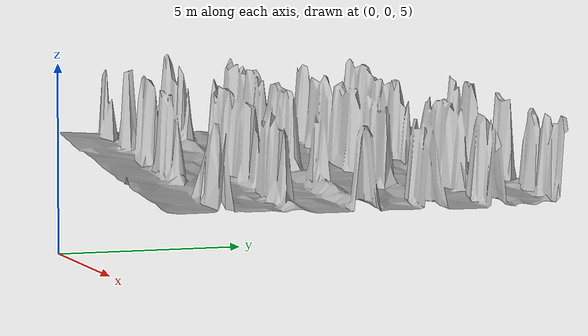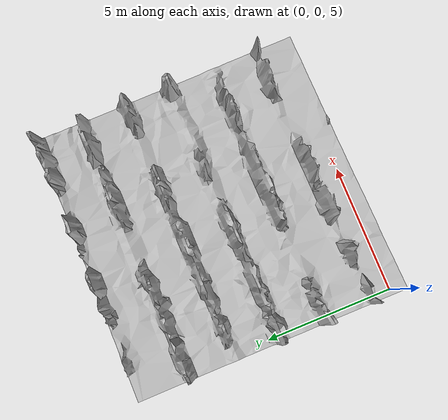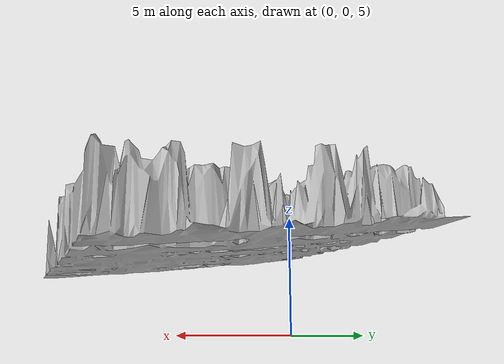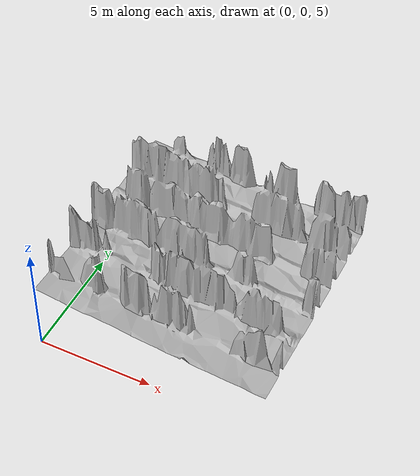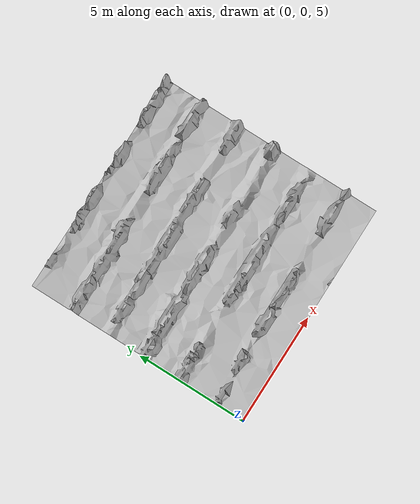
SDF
<?xml version="1.0" ?>
<sdf version="1.10">
    <model name="map_130_60">
        <link name="map_130_60_link">
            <visual name="map_130_60_visual">
                <geometry>
                    <mesh>
                        <uri>meshes/visual/map_130_60.obj</uri>
                    </mesh>
                </geometry>
            </visual>
            <collision name="map_130_60_collision">
                <surface>
                    <friction>
                        <ode>
                            <mu>2.316343837943928</mu>
                            <mu2>2.316343837943928</mu2>
                        </ode>
                        <bullet>
                            <friction>2.316343837943928</friction>
                            <friction2>2.316343837943928</friction2>
                        </bullet>
                    </friction>
                </surface>
                <geometry>
                    <mesh>
                        <uri>meshes/visual/map_130_60.obj</uri>
                    </mesh>
                </geometry>
            </collision>
        </link>
        <static>True</static>
    </model>
</sdf>
